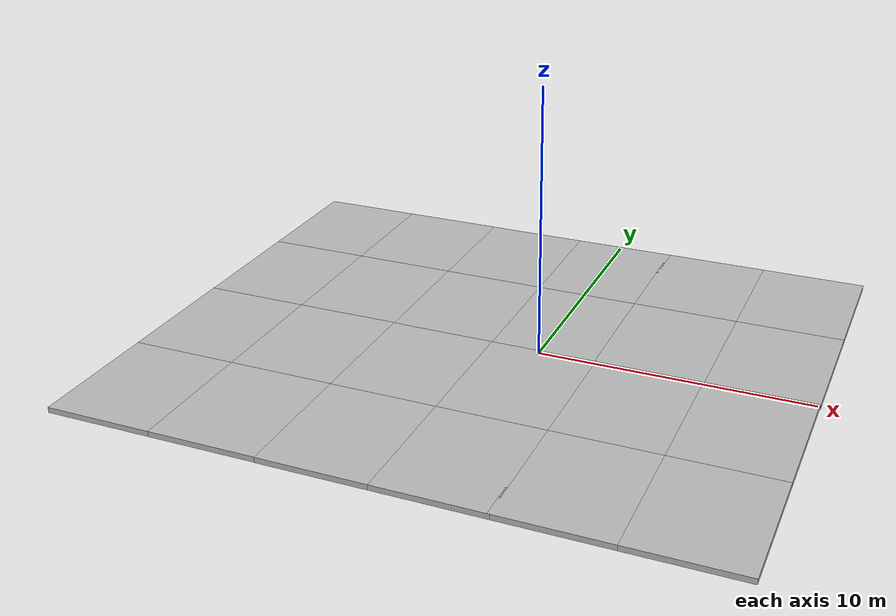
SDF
<sdf version="1.7">
 <world name="default">
  <light name="sun" type="directional">
   <pose>0 0 10 0 -0 0</pose>
   <diffuse>0.8 0.8 0.8 1</diffuse>
   <specular>0.2 0.2 0.2 1</specular>
   <attenuation>
    <range>1000</range>
    <constant>0.9</constant>
    <linear>0.01</linear>
    <quadratic>0.001</quadratic>
   </attenuation>
   <direction>-0.5 0.1 -0.9</direction>
   <spot><inner_angle>0</inner_angle><outer_angle>0</outer_angle><falloff>0</falloff></spot>
  </light>
  <gravity>0 0 -9.8</gravity>
  <magnetic_field>6e-06 2.3e-05 -4.2e-05</magnetic_field>
  <atmosphere type="adiabatic"/>
  <physics type="ode">
   <max_step_size>0.001</max_step_size>
   <real_time_factor>1</real_time_factor>
   <real_time_update_rate>1000</real_time_update_rate>
  </physics>
  <scene><ambient>0.4 0.4 0.4 1</ambient><background>0.7 0.7 0.7 1</background><shadows>1</shadows></scene>
  <spherical_coordinates>
   <surface_model>EARTH_WGS84</surface_model>
   <latitude_deg>0</latitude_deg>
   <longitude_deg>0</longitude_deg>
   <elevation>0</elevation>
   <heading_deg>0</heading_deg>
  </spherical_coordinates>
  <model name="mud_box">
   <static>1</static>
   <link name="link">
    <collision name="collision"><geometry><box><size>8 10 0.2</size></box></geometry></collision>
    <visual name="visual_1">
     <pose>-2 2.5 0 0 -0 0</pose>
     <cast_shadows>0</cast_shadows>
     <geometry><box><size>4 5 0.2</size></box></geometry>
     <material>
      <script>
       <uri>model://mud_box/materials/scripts</uri>
       <uri>model://mud_box/materials/textures</uri>
       <name>vrc/mud</name>
      </script>
     </material>
    </visual>
    <visual name="visual_2">
     <pose>2 2.5 0 0 -0 0</pose>
     <cast_shadows>0</cast_shadows>
     <geometry><box><size>4 5 0.2</size></box></geometry>
     <material>
      <script>
       <uri>model://mud_box/materials/scripts</uri>
       <uri>model://mud_box/materials/textures</uri>
       <name>vrc/mud</name>
      </script>
     </material>
    </visual>
    <visual name="visual_3">
     <pose>2 -2.5 0 0 -0 0</pose>
     <cast_shadows>0</cast_shadows>
     <geometry><box><size>4 5 0.2</size></box></geometry>
     <material>
      <script>
       <uri>model://mud_box/materials/scripts</uri>
       <uri>model://mud_box/materials/textures</uri>
       <name>vrc/mud</name>
      </script>
     </material>
    </visual>
    <visual name="visual_4">
     <pose>-2 -2.5 0 0 -0 0</pose>
     <cast_shadows>0</cast_shadows>
     <geometry><box><size>4 5 0.2</size></box></geometry>
     <material>
      <script>
       <uri>model://mud_box/materials/scripts</uri>
       <uri>model://mud_box/materials/textures</uri>
       <name>vrc/mud</name>
      </script>
     </material>
    </visual>
   </link>
   <pose>6.10719 4.9994 0 0 -0 0</pose>
  </model>
  <model name="mud_box_0">
   <static>1</static>
   <link name="link">
    <collision name="collision"><geometry><box><size>8 10 0.2</size></box></geometry></collision>
    <visual name="visual_1">
     <pose>-2 2.5 0 0 -0 0</pose>
     <cast_shadows>0</cast_shadows>
     <geometry><box><size>4 5 0.2</size></box></geometry>
     <material>
      <script>
       <uri>model://mud_box/materials/scripts</uri>
       <uri>model://mud_box/materials/textures</uri>
       <name>vrc/mud</name>
      </script>
     </material>
    </visual>
    <visual name="visual_2">
     <pose>2 2.5 0 0 -0 0</pose>
     <cast_shadows>0</cast_shadows>
     <geometry><box><size>4 5 0.2</size></box></geometry>
     <material>
      <script>
       <uri>model://mud_box/materials/scripts</uri>
       <uri>model://mud_box/materials/textures</uri>
       <name>vrc/mud</name>
      </script>
     </material>
    </visual>
    <visual name="visual_3">
     <pose>2 -2.5 0 0 -0 0</pose>
     <cast_shadows>0</cast_shadows>
     <geometry><box><size>4 5 0.2</size></box></geometry>
     <material>
      <script>
       <uri>model://mud_box/materials/scripts</uri>
       <uri>model://mud_box/materials/textures</uri>
       <name>vrc/mud</name>
      </script>
     </material>
    </visual>
    <visual name="visual_4">
     <pose>-2 -2.5 0 0 -0 0</pose>
     <cast_shadows>0</cast_shadows>
     <geometry><box><size>4 5 0.2</size></box></geometry>
     <material>
      <script>
       <uri>model://mud_box/materials/scripts</uri>
       <uri>model://mud_box/materials/textures</uri>
       <name>vrc/mud</name>
      </script>
     </material>
    </visual>
   </link>
   <pose>-1.81893 4.99029 0 0 -0 0</pose>
  </model>
  <model name="mud_box_1">
   <static>1</static>
   <link name="link">
    <collision name="collision"><geometry><box><size>8 10 0.2</size></box></geometry></collision>
    <visual name="visual_1">
     <pose>-2 2.5 0 0 -0 0</pose>
     <cast_shadows>0</cast_shadows>
     <geometry><box><size>4 5 0.2</size></box></geometry>
     <material>
      <script>
       <uri>model://mud_box/materials/scripts</uri>
       <uri>model://mud_box/materials/textures</uri>
       <name>vrc/mud</name>
      </script>
     </material>
    </visual>
    <visual name="visual_2">
     <pose>2 2.5 0 0 -0 0</pose>
     <cast_shadows>0</cast_shadows>
     <geometry><box><size>4 5 0.2</size></box></geometry>
     <material>
      <script>
       <uri>model://mud_box/materials/scripts</uri>
       <uri>model://mud_box/materials/textures</uri>
       <name>vrc/mud</name>
      </script>
     </material>
    </visual>
    <visual name="visual_3">
     <pose>2 -2.5 0 0 -0 0</pose>
     <cast_shadows>0</cast_shadows>
     <geometry><box><size>4 5 0.2</size></box></geometry>
     <material>
      <script>
       <uri>model://mud_box/materials/scripts</uri>
       <uri>model://mud_box/materials/textures</uri>
       <name>vrc/mud</name>
      </script>
     </material>
    </visual>
    <visual name="visual_4">
     <pose>-2 -2.5 0 0 -0 0</pose>
     <cast_shadows>0</cast_shadows>
     <geometry><box><size>4 5 0.2</size></box></geometry>
     <material>
      <script>
       <uri>model://mud_box/materials/scripts</uri>
       <uri>model://mud_box/materials/textures</uri>
       <name>vrc/mud</name>
      </script>
     </material>
    </visual>
   </link>
   <pose>6.08039 -4.99584 0 0 -0 0</pose>
  </model>
  <model name="mud_box_2">
   <static>1</static>
   <link name="link">
    <collision name="collision"><geometry><box><size>8 10 0.2</size></box></geometry></collision>
    <visual name="visual_1">
     <pose>-2 2.5 0 0 -0 0</pose>
     <cast_shadows>0</cast_shadows>
     <geometry><box><size>4 5 0.2</size></box></geometry>
     <material>
      <script>
       <uri>model://mud_box/materials/scripts</uri>
       <uri>model://mud_box/materials/textures</uri>
       <name>vrc/mud</name>
      </script>
     </material>
    </visual>
    <visual name="visual_2">
     <pose>2 2.5 0 0 -0 0</pose>
     <cast_shadows>0</cast_shadows>
     <geometry><box><size>4 5 0.2</size></box></geometry>
     <material>
      <script>
       <uri>model://mud_box/materials/scripts</uri>
       <uri>model://mud_box/materials/textures</uri>
       <name>vrc/mud</name>
      </script>
     </material>
    </visual>
    <visual name="visual_3">
     <pose>2 -2.5 0 0 -0 0</pose>
     <cast_shadows>0</cast_shadows>
     <geometry><box><size>4 5 0.2</size></box></geometry>
     <material>
      <script>
       <uri>model://mud_box/materials/scripts</uri>
       <uri>model://mud_box/materials/textures</uri>
       <name>vrc/mud</name>
      </script>
     </material>
    </visual>
    <visual name="visual_4">
     <pose>-2 -2.5 0 0 -0 0</pose>
     <cast_shadows>0</cast_shadows>
     <geometry><box><size>4 5 0.2</size></box></geometry>
     <material>
      <script>
       <uri>model://mud_box/materials/scripts</uri>
       <uri>model://mud_box/materials/textures</uri>
       <name>vrc/mud</name>
      </script>
     </material>
    </visual>
   </link>
   <pose>-1.83584 -4.99584 0 0 -0 0</pose>
  </model>
  <model name="mud_box_3">
   <static>1</static>
   <link name="link">
    <collision name="collision"><geometry><box><size>8 10 0.2</size></box></geometry></collision>
    <visual name="visual_1">
     <pose>-2 2.5 0 0 -0 0</pose>
     <cast_shadows>0</cast_shadows>
     <geometry><box><size>4 5 0.2</size></box></geometry>
     <material>
      <script>
       <uri>model://mud_box/materials/scripts</uri>
       <uri>model://mud_box/materials/textures</uri>
       <name>vrc/mud</name>
      </script>
     </material>
    </visual>
    <visual name="visual_2">
     <pose>2 2.5 0 0 -0 0</pose>
     <cast_shadows>0</cast_shadows>
     <geometry><box><size>4 5 0.2</size></box></geometry>
     <material>
      <script>
       <uri>model://mud_box/materials/scripts</uri>
       <uri>model://mud_box/materials/textures</uri>
       <name>vrc/mud</name>
      </script>
     </material>
    </visual>
    <visual name="visual_3">
     <pose>2 -2.5 0 0 -0 0</pose>
     <cast_shadows>0</cast_shadows>
     <geometry><box><size>4 5 0.2</size></box></geometry>
     <material>
      <script>
       <uri>model://mud_box/materials/scripts</uri>
       <uri>model://mud_box/materials/textures</uri>
       <name>vrc/mud</name>
      </script>
     </material>
    </visual>
    <visual name="visual_4">
     <pose>-2 -2.5 0 0 -0 0</pose>
     <cast_shadows>0</cast_shadows>
     <geometry><box><size>4 5 0.2</size></box></geometry>
     <material>
      <script>
       <uri>model://mud_box/materials/scripts</uri>
       <uri>model://mud_box/materials/textures</uri>
       <name>vrc/mud</name>
      </script>
     </material>
    </visual>
   </link>
   <pose>-9.81778 4.99867 0 0 -0 0</pose>
  </model>
  <model name="mud_box_4">
   <static>1</static>
   <link name="link">
    <collision name="collision"><geometry><box><size>8 10 0.2</size></box></geometry></collision>
    <visual name="visual_1">
     <pose>-2 2.5 0 0 -0 0</pose>
     <cast_shadows>0</cast_shadows>
     <geometry><box><size>4 5 0.2</size></box></geometry>
     <material>
      <script>
       <uri>model://mud_box/materials/scripts</uri>
       <uri>model://mud_box/materials/textures</uri>
       <name>vrc/mud</name>
      </script>
     </material>
    </visual>
    <visual name="visual_2">
     <pose>2 2.5 0 0 -0 0</pose>
     <cast_shadows>0</cast_shadows>
     <geometry><box><size>4 5 0.2</size></box></geometry>
     <material>
      <script>
       <uri>model://mud_box/materials/scripts</uri>
       <uri>model://mud_box/materials/textures</uri>
       <name>vrc/mud</name>
      </script>
     </material>
    </visual>
    <visual name="visual_3">
     <pose>2 -2.5 0 0 -0 0</pose>
     <cast_shadows>0</cast_shadows>
     <geometry><box><size>4 5 0.2</size></box></geometry>
     <material>
      <script>
       <uri>model://mud_box/materials/scripts</uri>
       <uri>model://mud_box/materials/textures</uri>
       <name>vrc/mud</name>
      </script>
     </material>
    </visual>
    <visual name="visual_4">
     <pose>-2 -2.5 0 0 -0 0</pose>
     <cast_shadows>0</cast_shadows>
     <geometry><box><size>4 5 0.2</size></box></geometry>
     <material>
      <script>
       <uri>model://mud_box/materials/scripts</uri>
       <uri>model://mud_box/materials/textures</uri>
       <name>vrc/mud</name>
      </script>
     </material>
    </visual>
   </link>
   <pose>-9.82765 -4.98483 0 0 -0 0</pose>
  </model>
 </world>
</sdf>
